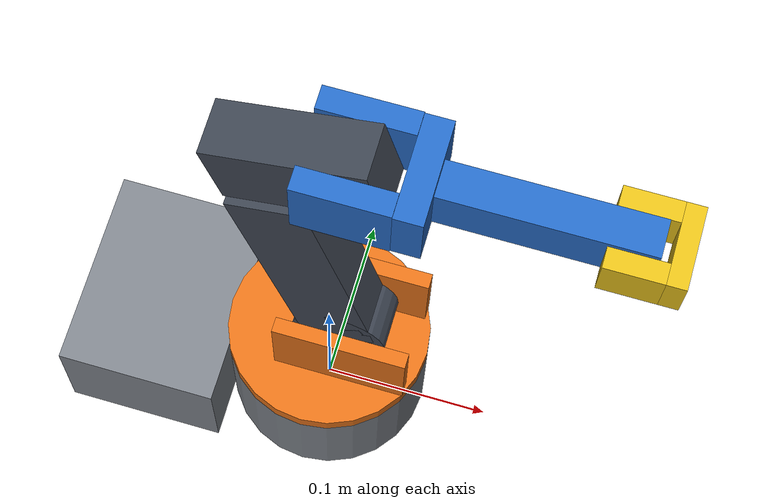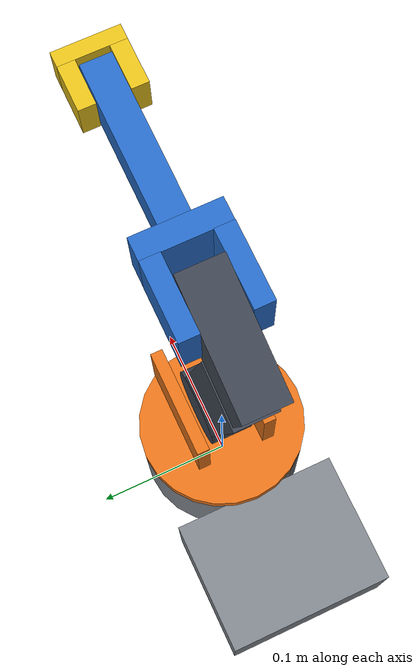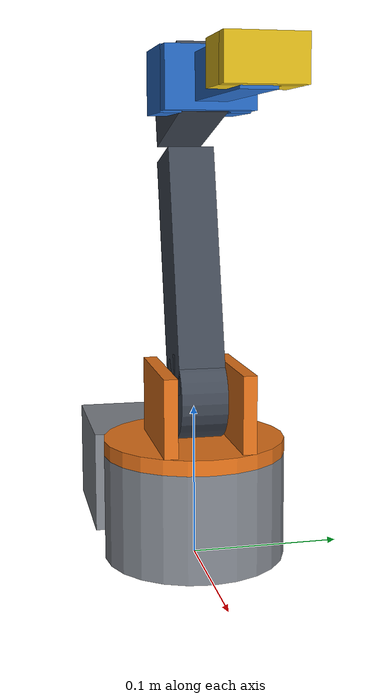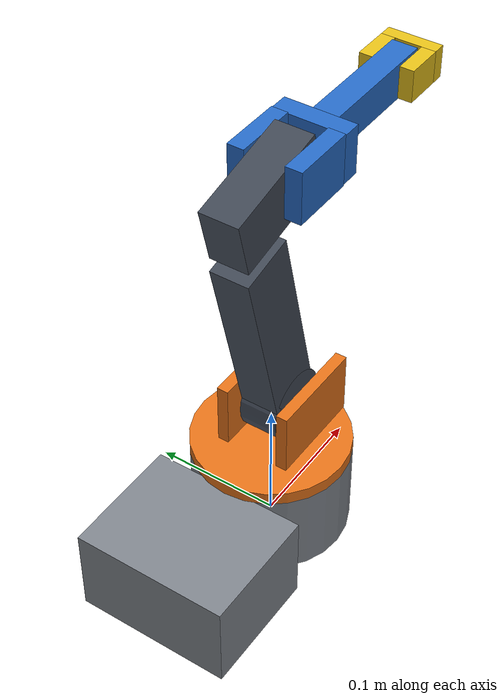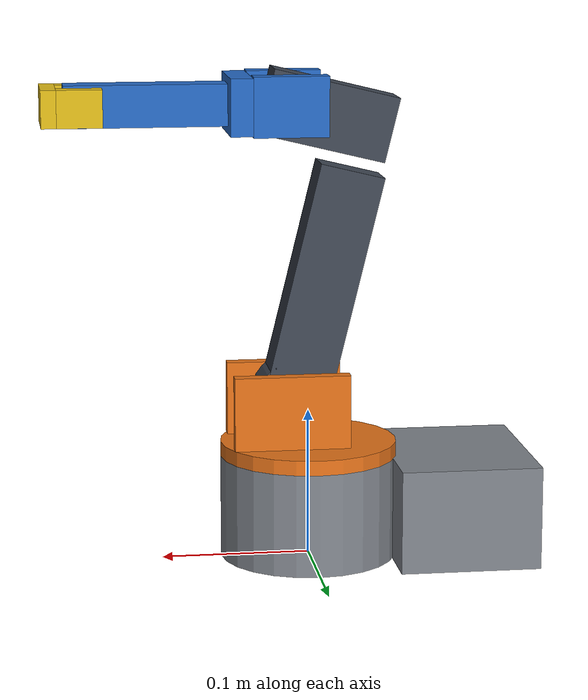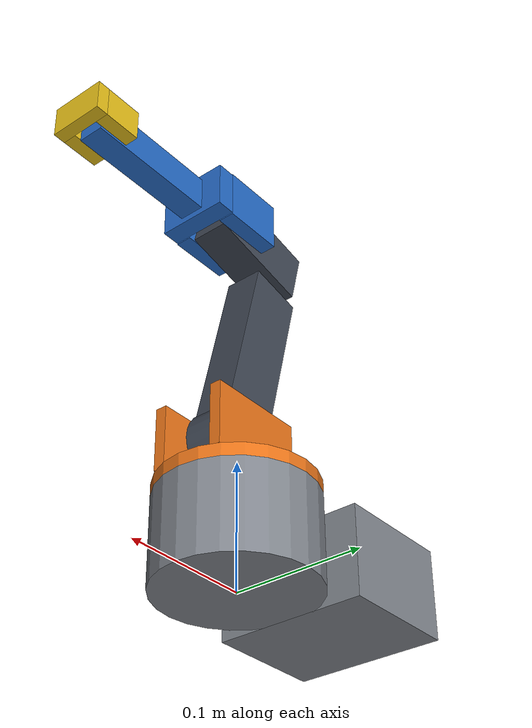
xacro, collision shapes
<?xml version="1.0"?>
<robot xmlns:xacro="http://www.ros.org/wiki/xacro" name="robot_arm">

  <!-- ===================== arguments ===================== -->
  <!-- ignition = ROS 2 Humble + Ignition Fortress (ign_ros2_control)
       gz       = ROS 2 Jazzy  + Gazebo Harmonic  (gz_ros2_control)                       -->
  <xacro:arg name="sim_backend"      default="ignition"/>
  <xacro:arg name="use_ros2_control" default="true"/>
  <xacro:arg name="debug_colors"     default="true"/>
  <xacro:arg name="controllers_file" default="$(find robot_arm_description)/config/controllers.yaml"/>

  <xacro:include filename="$(find robot_arm_description)/urdf/robot.ros2_control.xacro"/>
  <xacro:include filename="$(find robot_arm_description)/urdf/robot.gazebo.xacro"/>

  <!-- ===================== constants ===================== -->
  <xacro:property name="mm"         value="0.001"/>
  <xacro:property name="mesh_dir"   value="package://robot_arm_description/meshes"/>
  <xacro:property name="mesh_scale" value="0.001 0.001 0.001"/>   <!-- [STL] bbox sizes 43..241 -> mm -->

  <!-- joint geometry (mesh-space numbers in mm, converted to m) -->
  <xacro:property name="pan_z"            value="${80.0*mm}"/>

  <xacro:property name="shoulder_axis_x"  value="${9.8*mm}"/>
  <xacro:property name="shoulder_axis_z"  value="${30.0*mm}"/>

  <!-- UPPER ARM mesh: shoulder hole (0,-100) and elbow hole (47.5, 94.28) in mesh coords [STL] -->
  <xacro:property name="ua_pivot_x"       value="${0.0*mm}"/>
  <xacro:property name="ua_pivot_z"       value="${-100.0*mm}"/>
  <xacro:property name="ua_elbow_x"       value="${47.5*mm}"/>
  <xacro:property name="ua_elbow_z"       value="${94.28*mm}"/>
  <!-- tilt of the pivot->elbow line from mesh +Z (13.7 deg).  Rotating the mesh by -tilt makes link +Z the arm line -->
  <xacro:property name="ua_tilt"          value="${atan2(ua_elbow_x-ua_pivot_x, ua_elbow_z-ua_pivot_z)}"/>
  <xacro:property name="upper_arm_length" value="${sqrt((ua_elbow_x-ua_pivot_x)**2+(ua_elbow_z-ua_pivot_z)**2)}"/>

  <xacro:property name="forearm_length"   value="${140.0*mm}"/>

  <xacro:property name="wrist_pin_y"      value="${7.5*mm}"/>

  <!-- joint limits -->
  <!-- pan: no geometric stop, servo range assumed +-90 deg        [ASSUMED]
       lift/elbow/wrist: contiguous mesh-collision-free window around q=0 minus 3 deg margin  [STL, see docs] -->
  <xacro:property name="pan_lo"    value="${radians(-90)}"/>
  <xacro:property name="pan_hi"    value="${radians( 90)}"/>
  <xacro:property name="lift_lo"   value="${radians(-78)}"/>
  <xacro:property name="lift_hi"   value="${radians(106)}"/>
  <xacro:property name="elbow_lo"  value="${radians(-138)}"/>
  <xacro:property name="elbow_hi"  value="${radians( 77)}"/>
  <xacro:property name="wrist_lo"  value="${radians(-102)}"/>
  <xacro:property name="wrist_hi"  value="${radians( 102)}"/>

  <!-- actuator placeholders [ASSUMED]  (typical hobby-servo stall torque / speed) -->
  <xacro:property name="pan_effort"   value="1.0"/>   <!-- N*m  ~ one MG996R -->
  <xacro:property name="lift_effort"  value="2.0"/>   <!-- N*m  two servos, one per ear -->
  <xacro:property name="elbow_effort" value="1.0"/>
  <xacro:property name="wrist_effort" value="0.2"/>   <!-- N*m  ~ SG90 -->
  <xacro:property name="joint_speed"  value="3.0"/>   <!-- rad/s -->
  <xacro:property name="joint_damping"  value="0.05"/>
  <xacro:property name="joint_friction" value="0.02"/>

  <xacro:property name="base_mass"      value="1.00"/>
  <xacro:property name="shoulder_mass"  value="0.30"/>
  <xacro:property name="upper_arm_mass" value="0.25"/>
  <xacro:property name="forearm_mass"   value="0.10"/>
  <xacro:property name="wrist_mass"     value="0.03"/>

  <!-- centre of mass [m, link frame] and inertia PER KG [m^2: ixx iyy izz ixy ixz iyz]
       computed from the STL volumes assuming uniform density [STL].  Inertia = mass * these.  -->
  <xacro:property name="base_com" value="-0.0568876 -0.000151026 0.0414031"/>
  <xacro:property name="base_i" value="0.00274515 0.00536777 0.00712232 -5.5062e-06 0.000157223 3.21412e-07"/>
  <xacro:property name="shoulder_com" value="0.00326334 4.30231e-08 0.00316603"/>
  <xacro:property name="shoulder_i" value="0.00104644 0.00107327 0.00165751 -1.4246e-10 -9.36904e-05 1.02401e-10"/>
  <xacro:property name="upper_arm_com" value="-0.0173272 -3.85431e-05 0.0978832"/>
  <xacro:property name="upper_arm_i" value="0.00531897 0.00565327 0.000453664 6.67882e-07 0.000588872 3.93589e-06"/>
  <xacro:property name="forearm_com" value="0.0554396 0.00135289 -1.35141e-10"/>
  <xacro:property name="forearm_i" value="0.000277503 0.00194742 0.00202719 5.87049e-05 -9.47073e-11 -5.95801e-11"/>
  <xacro:property name="wrist_com" value="0.012098 -0.00221546 -4.1261e-09"/>
  <xacro:property name="wrist_i" value="0.000250781 0.000175866 0.000321848 -1.21679e-05 9.76777e-11 -1.59523e-11"/>

  <!-- ===================== materials ===================== -->
  <xacro:if value="$(arg debug_colors)">
    <material name="mat_base">      <color rgba="0.50 0.52 0.55 1"/></material>
    <material name="mat_shoulder">  <color rgba="0.90 0.45 0.10 1"/></material>
    <material name="mat_upper_arm"> <color rgba="0.25 0.28 0.33 1"/></material>
    <material name="mat_forearm">   <color rgba="0.15 0.42 0.78 1"/></material>
    <material name="mat_wrist">     <color rgba="0.90 0.75 0.10 1"/></material>
  </xacro:if>
  <xacro:unless value="$(arg debug_colors)">
    <material name="mat_base">      <color rgba="0.07 0.07 0.08 1"/></material>
    <material name="mat_shoulder">  <color rgba="0.07 0.07 0.08 1"/></material>
    <material name="mat_upper_arm"> <color rgba="0.07 0.07 0.08 1"/></material>
    <material name="mat_forearm">   <color rgba="0.07 0.07 0.08 1"/></material>
    <material name="mat_wrist">     <color rgba="0.07 0.07 0.08 1"/></material>
  </xacro:unless>

  <!-- ===================== macros ===================== -->
  <!-- i = "ixx iyy izz ixy ixz iyz" per kg  ->  multiplied by the link mass -->
  <xacro:macro name="mesh_inertial" params="mass com i">
    <inertial>
      <origin xyz="${com}" rpy="0 0 0"/>
      <mass value="${mass}"/>
      <inertia ixx="${mass*float(i.split()[0])}" iyy="${mass*float(i.split()[1])}" izz="${mass*float(i.split()[2])}"
               ixy="${mass*float(i.split()[3])}" ixz="${mass*float(i.split()[4])}" iyz="${mass*float(i.split()[5])}"/>
    </inertial>
  </xacro:macro>

  <!-- ===================== links & joints ===================== -->
  <link name="world"/>
  <joint name="world_to_base" type="fixed">
    <parent link="world"/>
    <child link="base_link"/>
    <origin xyz="0 0 0" rpy="0 0 0"/>
  </joint>

  <!-- base: mesh frame == link frame [STL: bbox x -150..60, y +-60, z 0..70] -->
  <link name="base_link">
    <visual>
      <origin xyz="0 0 0" rpy="0 0 0"/>
      <geometry><mesh filename="${mesh_dir}/base.stl" scale="${mesh_scale}"/></geometry>
      <material name="mat_base"/>
    </visual>
    <collision><origin xyz="0 0 0.035" rpy="0 0 0"/><geometry><cylinder radius="0.06" length="0.07"/></geometry></collision>
    <collision><origin xyz="-0.1025 0 0.035" rpy="0 0 0"/><geometry><box size="0.095 0.12 0.07"/></geometry></collision>
    <xacro:mesh_inertial mass="${base_mass}" com="${base_com}" i="${base_i}"/>
  </link>

  <!-- 1) BASE -> SHOULDER : turntable yaw about Z -->
  <joint name="shoulder_pan_joint" type="revolute">
    <parent link="base_link"/>
    <child link="shoulder_link"/>
    <origin xyz="0 0 ${pan_z}" rpy="0 0 0"/>
    <axis xyz="0 0 1"/>
    <limit lower="${pan_lo}" upper="${pan_hi}" effort="${pan_effort}" velocity="${joint_speed}"/>
    <dynamics damping="${joint_damping}" friction="${joint_friction}"/>
  </joint>

  <!-- shoulder: mesh frame == link frame [STL: disc r=60, z -10..0; ears to z=50] -->
  <link name="shoulder_link">
    <visual>
      <origin xyz="0 0 0" rpy="0 0 0"/>
      <geometry><mesh filename="${mesh_dir}/shoulder.stl" scale="${mesh_scale}"/></geometry>
      <material name="mat_shoulder"/>
    </visual>
    <collision><origin xyz="0 0 -0.005" rpy="0 0 0"/><geometry><cylinder radius="0.06" length="0.01"/></geometry></collision>
    <collision><origin xyz="0.014 0.02495 0.025" rpy="0 0 0"/><geometry><box size="0.078 0.0089 0.05"/></geometry></collision>
    <collision><origin xyz="0.014 -0.02495 0.025" rpy="0 0 0"/><geometry><box size="0.078 0.0089 0.05"/></geometry></collision>
    <xacro:mesh_inertial mass="${shoulder_mass}" com="${shoulder_com}" i="${shoulder_i}"/>
  </link>

  <!-- 2) SHOULDER -> UPPER ARM : pitch about Y through the servo shaft -->
  <joint name="shoulder_lift_joint" type="revolute">
    <parent link="shoulder_link"/>
    <child link="upper_arm_link"/>
    <origin xyz="${shoulder_axis_x} 0 ${shoulder_axis_z}" rpy="0 0 0"/>
    <axis xyz="0 1 0"/>
    <limit lower="${lift_lo}" upper="${lift_hi}" effort="${lift_effort}" velocity="${joint_speed}"/>
    <dynamics damping="${joint_damping}" friction="${joint_friction}"/>
  </joint>

  <!-- upper arm: visual = mesh rotated by -tilt about Y and shifted so mesh shoulder-hole lands on the link origin.
       (translation = -Ry(-tilt) * pivot) -->
  <link name="upper_arm_link">
    <visual>
      <origin xyz="${-(ua_pivot_x*cos(ua_tilt) - ua_pivot_z*sin(ua_tilt))} 0 ${-(ua_pivot_x*sin(ua_tilt) + ua_pivot_z*cos(ua_tilt))}"
              rpy="0 ${-ua_tilt} 0"/>
      <geometry><mesh filename="${mesh_dir}/upper_arm.stl" scale="${mesh_scale}"/></geometry>
      <material name="mat_upper_arm"/>
    </visual>
    <collision><origin xyz="0 0 0" rpy="${pi/2} ${-ua_tilt} 0"/><geometry><cylinder radius="0.0275" length="0.03"/></geometry></collision>
    <collision><origin xyz="-0.019 0 0.07771" rpy="0 ${-ua_tilt} 0"/><geometry><box size="0.044 0.03 0.16"/></geometry></collision>
    <collision><origin xyz="-0.02229 0 0.19221" rpy="0 ${-ua_tilt} 0"/><geometry><box size="0.086 0.03 0.044"/></geometry></collision>
    <xacro:mesh_inertial mass="${upper_arm_mass}" com="${upper_arm_com}" i="${upper_arm_i}"/>
  </link>

  <!-- 3) UPPER ARM -> FOREARM : elbow pitch about Y -->
  <joint name="elbow_joint" type="revolute">
    <parent link="upper_arm_link"/>
    <child link="forearm_link"/>
    <origin xyz="0 0 ${upper_arm_length}" rpy="0 0 0"/>
    <axis xyz="0 1 0"/>
    <limit lower="${elbow_lo}" upper="${elbow_hi}" effort="${elbow_effort}" velocity="${joint_speed}"/>
    <dynamics damping="${joint_damping}" friction="${joint_friction}"/>
  </joint>

  <!-- forearm: mesh origin IS the elbow hole; mesh points toward -X, so flip 180 deg about Z -->
  <link name="forearm_link">
    <visual>
      <origin xyz="0 0 0" rpy="0 0 ${pi}"/>
      <geometry><mesh filename="${mesh_dir}/fore_arm.stl" scale="${mesh_scale}"/></geometry>
      <material name="mat_forearm"/>
    </visual>
    <collision><origin xyz="0.005 0.0216 0" rpy="0 0 0"/><geometry><box size="0.05 0.0128 0.04"/></geometry></collision>
    <collision><origin xyz="0.005 -0.0216 0" rpy="0 0 0"/><geometry><box size="0.05 0.0128 0.04"/></geometry></collision>
    <collision><origin xyz="0.0375 0 0" rpy="0 0 0"/><geometry><box size="0.015 0.056 0.038"/></geometry></collision>
    <collision><origin xyz="0.09875 0 0" rpy="0 0 0"/><geometry><box size="0.1075 0.02 0.028"/></geometry></collision>
    <xacro:mesh_inertial mass="${forearm_mass}" com="${forearm_com}" i="${forearm_i}"/>
  </link>

  <!-- 4) FOREARM -> WRIST : wrist pitch about Y through the hinge pin -->
  <joint name="wrist_pitch_joint" type="revolute">
    <parent link="forearm_link"/>
    <child link="wrist_link"/>
    <origin xyz="${forearm_length} 0 0" rpy="0 0 0"/>
    <axis xyz="0 1 0"/>
    <limit lower="${wrist_lo}" upper="${wrist_hi}" effort="${wrist_effort}" velocity="${joint_speed}"/>
    <dynamics damping="${joint_damping}" friction="${joint_friction}"/>
  </joint>

  <link name="wrist_link">
    <visual>
      <origin xyz="${wrist_pin_y} 0 0" rpy="0 0 ${pi/2}"/>
      <geometry><mesh filename="${mesh_dir}/wrist.stl" scale="${mesh_scale}"/></geometry>
      <material name="mat_wrist"/>
    </visual>
    <collision><origin xyz="0.0225 0 0" rpy="0 0 0"/><geometry><box size="0.01 0.043 0.025"/></geometry></collision>
    <collision><origin xyz="0.0025 0.016 0" rpy="0 0 0"/><geometry><box size="0.03 0.011 0.025"/></geometry></collision>
    <collision><origin xyz="0.0025 -0.016 0" rpy="0 0 0"/><geometry><box size="0.03 0.011 0.025"/></geometry></collision>
    <xacro:mesh_inertial mass="${wrist_mass}" com="${wrist_com}" i="${wrist_i}"/>
  </link>

  <!-- ===================== ros2_control + Gazebo ===================== -->
  <xacro:if value="$(arg use_ros2_control)">
    <xacro:arm_ros2_control sim_backend="$(arg sim_backend)"/>
    <xacro:arm_gazebo_plugin sim_backend="$(arg sim_backend)" controllers_file="$(arg controllers_file)"/>
  </xacro:if>

</robot>
